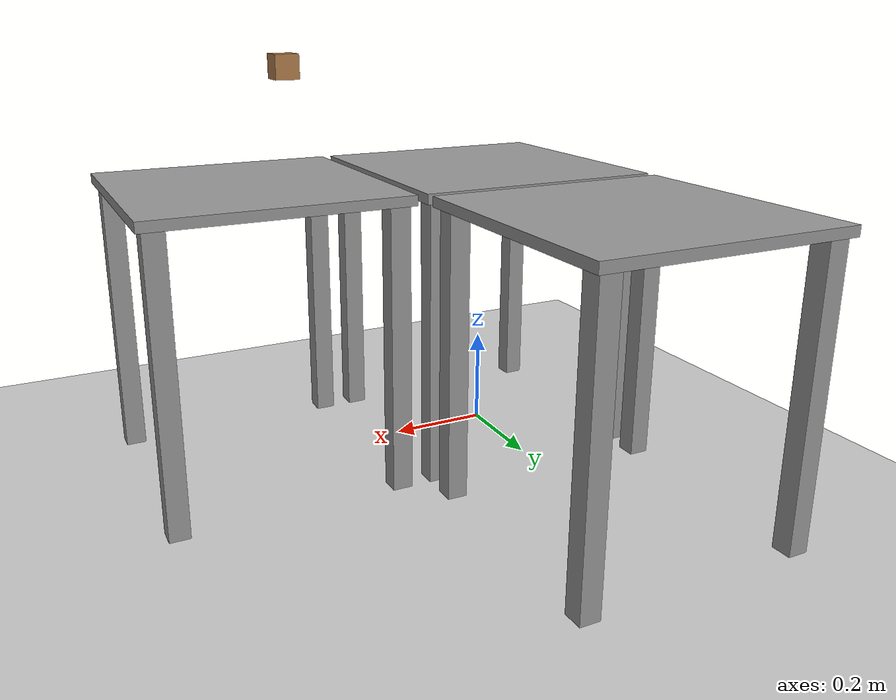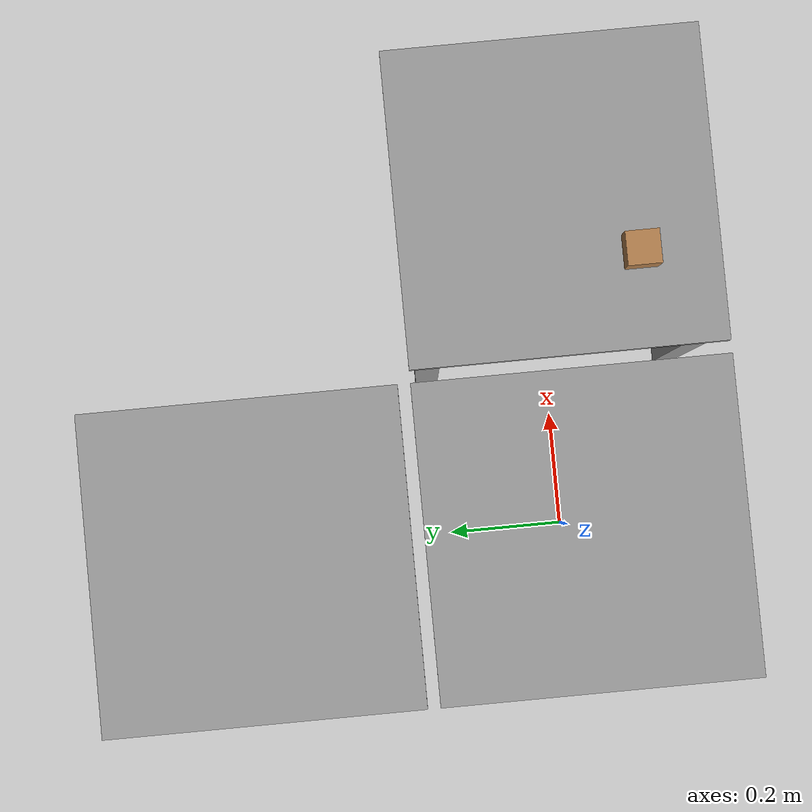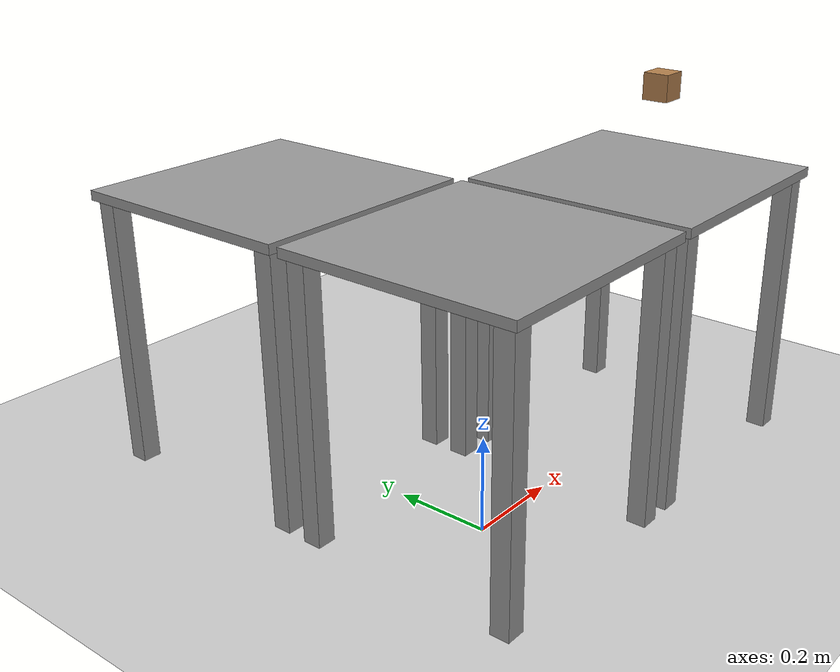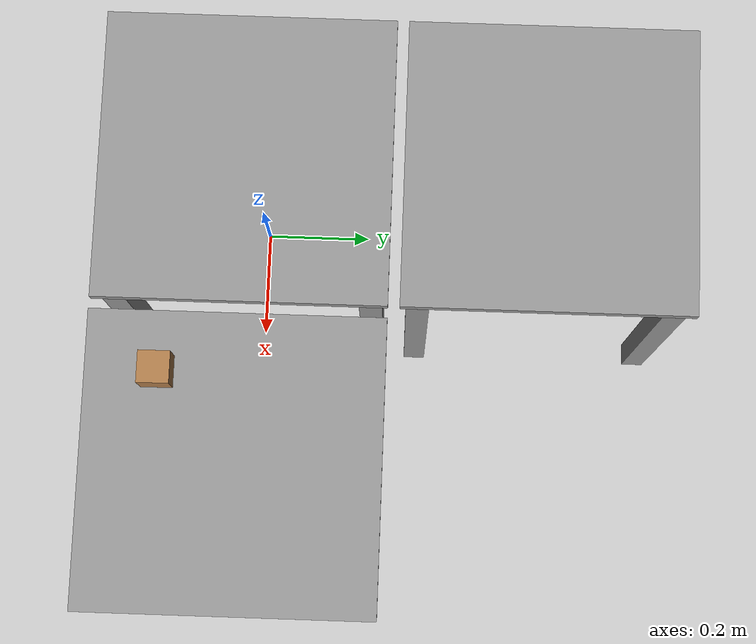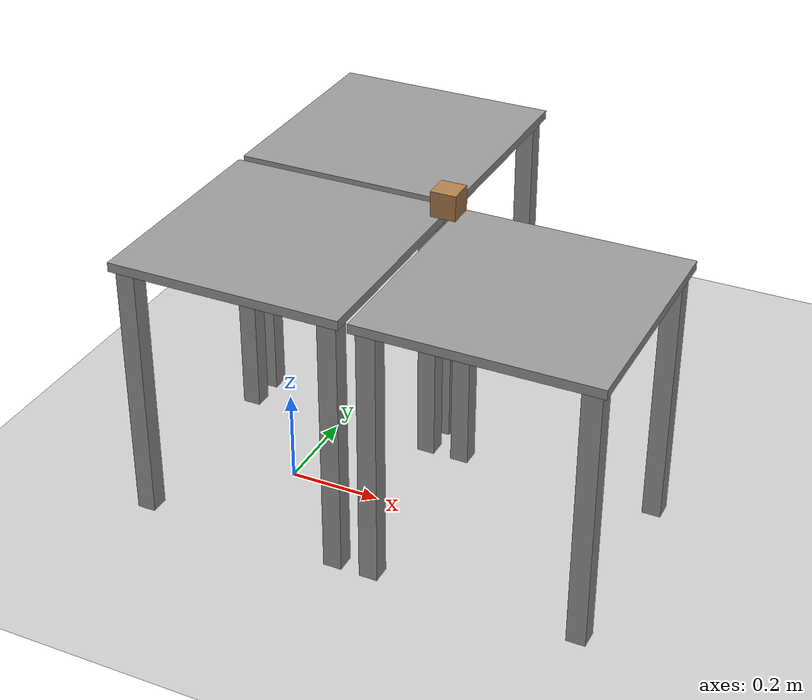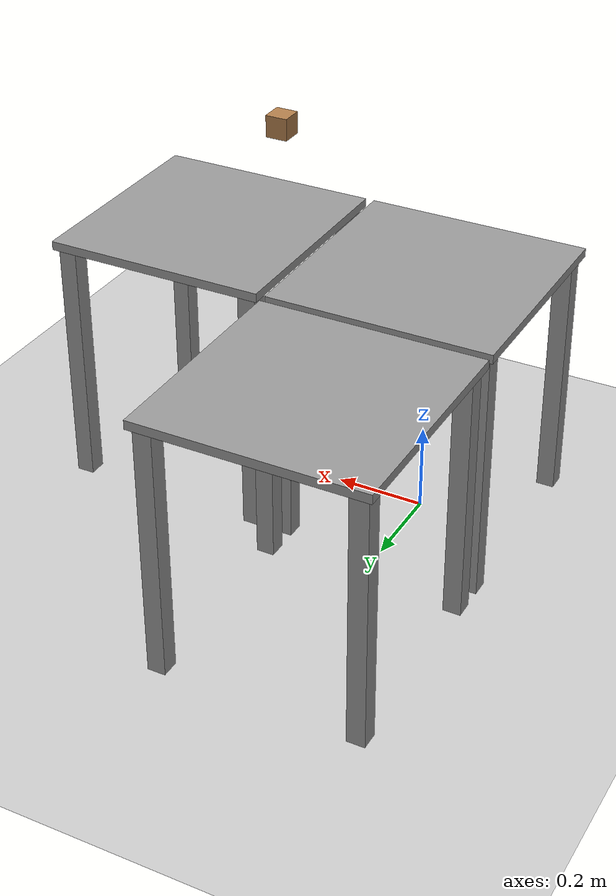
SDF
<?xml version="1.0" ?>

<sdf version="1.6">

  <world name="ur5_cubes">

    <gui>
      <camera name="user_camera">
        <pose>1.4 -2.3 1.4 0.0 0.25 1.9</pose>
        <projection_type>orthographic</projection_type>
      </camera>
    </gui>

    <gravity>0 0 -9.81</gravity>

    <physics name="default_physics" default="0" type="ode">
      <max_step_size>0.001</max_step_size>
      <real_time_factor>1</real_time_factor>
      <real_time_update_rate>1000</real_time_update_rate>
    </physics>

    <scene>
      <ambient>0.4 0.4 0.4 1</ambient>
      <background>0.7 0.7 0.7 1</background>
      <shadows>1</shadows>
    </scene>

    <!-- Light Source -->
    <include>
      <uri>model://sun</uri>
    </include>

    <!-- A ground plane -->
    <include>
      <uri>model://ground_plane</uri>
      <pose>0 0 0 0 0 0</pose>
    </include>

    <!-- A gazebo links attacher -->

    <!-- The robot base -->
    <model name="ur5_base">
      <include>
        <uri>model://ur5_base</uri>
        <pose>0 0 0 0 0 0</pose>
      </include>
    </model>

    <!-- Table -->
    <!-- Table top is at (x,y,z) = (0.7, 0, 0.775) -->
    <!-- Table top size is 0.9x0.9 -->

    <!--Table for cube (initial)-->
    <model name="cube_table">
      <include>
        <uri>model://ur5_base</uri>
        <pose>0.52 0 0 0 0 0</pose>
      </include>
    </model>

    <!--Table for cube (destination)-->
    <model name="cube_table2">
      <include>
        <uri>model://ur5_base</uri>
        <pose>0.0 0.52 0 0 0 0</pose>
      </include>
    </model>

    <!-- Cubes -->
    <model name="cube1">
      <pose>0.4 -0.1 0.775 0 0 0</pose>
      <link name="link">
        <pose>0 0 0.025 0 0 0</pose>
        <inertial>
          <mass>0.5</mass>
          <inertia>
            <ixx>2.3541666666666672e-05</ixx>
            <ixy>0</ixy>
            <ixz>0</ixz>
            <iyy>2.3541666666666672e-05</iyy>
            <iyz>0</iyz>
            <izz>2.3541666666666672e-05</izz>
          </inertia>
        </inertial>
        <collision name="collision">
          <geometry>
            <box>
              <size>0.001 0.001 0.05</size>
            </box>
          </geometry>
          <surface>
            <contact>
              <poissons_ratio>0.347</poissons_ratio>
              <elastic_modulus>8.8e+09</elastic_modulus>
              <ode>
                <kp>100000</kp>
                <kd>1</kd>
                <max_vel>1.0</max_vel>
                <min_depth>0.001</min_depth>
              </ode>
            </contact>
            <friction>
              <torsional>
                <coefficient>1.0</coefficient>
                <use_patch_radius>0</use_patch_radius>
                <surface_radius>0.05</surface_radius>
              </torsional>
            </friction>
          </surface>
        </collision>
        <visual name="visual">
          <geometry>
            <box>
              <size>0.05 0.05 0.05</size>
            </box>
          </geometry>
          <material>
            <script>
              <uri>file://media/materials/scripts/gazebo.material</uri>
              <name>Gazebo/Wood</name>
            </script>
          </material>
        </visual>
      </link>
    </model>

  </world>

</sdf>

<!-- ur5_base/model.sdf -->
<sdf version="1.6">
  <model name="ur5_base">
    <static>true</static>

    <link name="top_plate">
      <pose>0 0 0.58 0 0 0</pose>
      <collision name="top_plate_collision">
        <geometry>
          <box>
            <size>0.5 0.5 0.02</size>
          </box>
        </geometry>
        <surface>
          <contact>
            <collide_bitmask>0x01</collide_bitmask>
          </contact>
        </surface>
      </collision>
      <visual name="top_plate_visual">
        <geometry>
          <box>
            <size>0.5 0.5 0.02</size>
          </box>
        </geometry>
        <material>
          <script>
            <uri>file://media/materials/scripts/gazebo.material</uri>
            <name>Gazebo/Grey</name>
          </script>
        </material>
      </visual>
    </link>
    <link name="leg1">
      <pose>0.22 0.22 0.285 0 0 0</pose>
      <collision name="leg1_collision">
        <geometry>
          <box>
            <size>0.04 0.04 0.57</size>
          </box>
        </geometry>
      </collision>
      <visual name="leg1_visual">
        <geometry>
          <box>
            <size>0.04 0.04 0.57</size>
          </box>
        </geometry>
        <material>
          <script>
            <uri>file://media/materials/scripts/gazebo.material</uri>
            <name>Gazebo/Grey</name>
          </script>
        </material>
      </visual>
    </link>
    <link name="leg2">
      <pose>-0.22 0.22 0.285 0 0 0</pose>
      <collision name="leg2_collision">
        <geometry>
          <box>
            <size>0.04 0.04 0.57</size>
          </box>
        </geometry>
      </collision>
      <visual name="leg2_visual">
        <geometry>
          <box>
            <size>0.04 0.04 0.57</size>
          </box>
        </geometry>
        <material>
          <script>
            <uri>file://media/materials/scripts/gazebo.material</uri>
            <name>Gazebo/Grey</name>
          </script>
        </material>
      </visual>
    </link>
    <link name="leg3">
      <pose>0.22 -0.22 0.285 0 0 0</pose>
      <collision name="leg3_collision">
        <geometry>
          <box>
            <size>0.04 0.04 0.57</size>
          </box>
        </geometry>
      </collision>
      <visual name="leg3_visual">
        <geometry>
          <box>
            <size>0.04 0.04 0.57</size>
          </box>
        </geometry>
        <material>
          <script>
            <uri>file://media/materials/scripts/gazebo.material</uri>
            <name>Gazebo/Grey</name>
          </script>
        </material>
      </visual>
    </link>
    <link name="leg4">
      <pose>-0.22 -0.22 0.285 0 0 0</pose>
      <collision name="leg4_collision">
        <geometry>
          <box>
            <size>0.04 0.04 0.57</size>
          </box>
        </geometry>
      </collision>
      <visual name="leg4_visual">
        <geometry>
          <box>
            <size>0.04 0.04 0.57</size>
          </box>
        </geometry>
        <material>
          <script>
            <uri>file://media/materials/scripts/gazebo.material</uri>
            <name>Gazebo/Grey</name>
          </script>
        </material>
      </visual>
    </link>
  </model>
</sdf>
